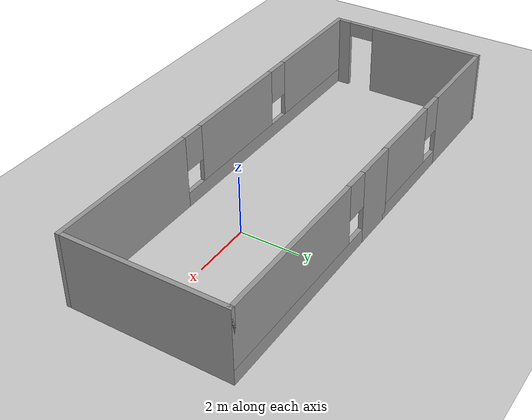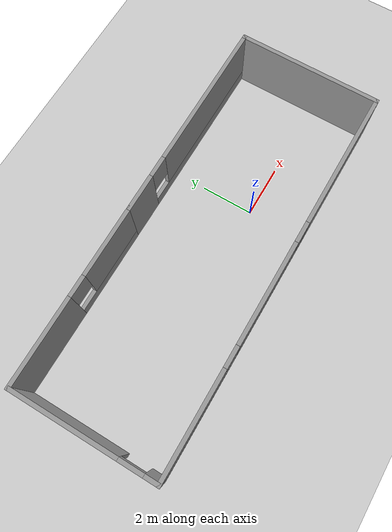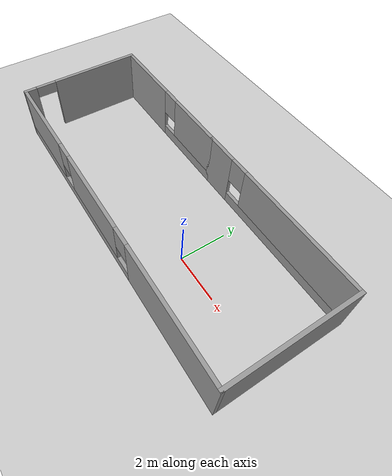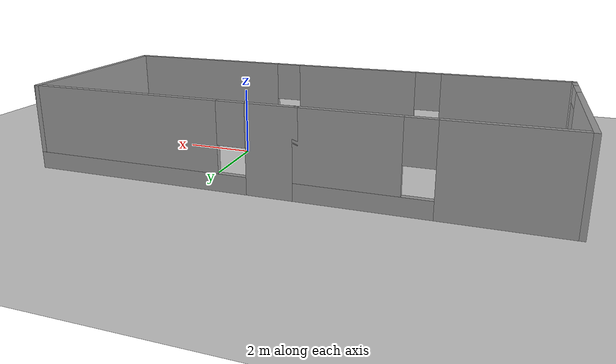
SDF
<sdf version="1.7">
 <world name="default">
  <light name="sun" type="directional">
   <pose>0 0 10 0 -0 0</pose>
   <diffuse>0.8 0.8 0.8 1</diffuse>
   <specular>0.2 0.2 0.2 1</specular>
   <attenuation>
    <range>1000</range>
    <constant>0.9</constant>
    <linear>0.01</linear>
    <quadratic>0.001</quadratic>
   </attenuation>
   <direction>-0.5 0.1 -0.9</direction>
   <spot><inner_angle>0</inner_angle><outer_angle>0</outer_angle><falloff>0</falloff></spot>
  </light>
  <model name="ground_plane">
   <static>1</static>
   <link name="link">
    <collision name="collision">
     <geometry><plane><normal>0 0 1</normal><size>100 100</size></plane></geometry>
     <surface><friction><ode><mu>100</mu><mu2>50</mu2></ode></friction></surface>
    </collision>
    <visual name="visual">
     <cast_shadows>0</cast_shadows>
     <geometry><plane><normal>0 0 1</normal><size>100 100</size></plane></geometry>
     <material>
      <script><uri>file://media/materials/scripts/gazebo.material</uri><name>Gazebo/Grey</name></script>
     </material>
    </visual>
   </link>
  </model>
  <gravity>0 0 -9.8</gravity>
  <magnetic_field>6e-06 2.3e-05 -4.2e-05</magnetic_field>
  <atmosphere type="adiabatic"/>
  <physics type="ode">
   <max_step_size>0.001</max_step_size>
   <real_time_factor>1</real_time_factor>
   <real_time_update_rate>1000</real_time_update_rate>
  </physics>
  <scene><ambient>0.4 0.4 0.4 1</ambient><background>0.7 0.7 0.7 1</background><shadows>1</shadows></scene>
  <audio><device>default</device></audio>
  <spherical_coordinates>
   <surface_model>EARTH_WGS84</surface_model>
   <latitude_deg>0</latitude_deg>
   <longitude_deg>0</longitude_deg>
   <elevation>0</elevation>
   <heading_deg>0</heading_deg>
  </spherical_coordinates>
  <model name="test">
   <pose>-2.26041 0.547931 0 0 -0 0</pose>
   <link name="Wall_10">
    <collision name="Wall_10_Collision">
     <geometry><box><size>5.5 0.15 2.5</size></box></geometry>
     <pose>0 0 1.25 0 -0 0</pose>
    </collision>
    <visual name="Wall_10_Visual">
     <pose>0 0 1.25 0 -0 0</pose>
     <geometry><box><size>5.5 0.15 2.5</size></box></geometry>
     <material>
      <script><uri>file://media/materials/scripts/gazebo.material</uri><name>Gazebo/Grey</name></script>
      <ambient>1 1 1 1</ambient>
     </material>
     <meta><layer>0</layer></meta>
    </visual>
    <pose>7.3 -0 0 0 -0 -1.5708</pose>
   </link>
   <link name="Wall_11">
    <pose>0 -2.675 0 0 -0 3.14159</pose>
    <visual name="Wall_11_Visual_0">
     <pose>-4.69232 0 1.25 0 -0 0</pose>
     <geometry><box><size>5.36536 0.15 2.5</size></box></geometry>
     <material>
      <script><uri>file://media/materials/scripts/gazebo.material</uri><name>Gazebo/Grey</name></script>
      <ambient>1 1 1 1</ambient>
     </material>
     <meta><layer>0</layer></meta>
    </visual>
    <collision name="Wall_11_Collision_0">
     <geometry><box><size>5.36536 0.15 2.5</size></box></geometry>
     <pose>-4.69232 0 1.25 0 -0 0</pose>
    </collision>
    <visual name="Wall_11_Visual_1">
     <pose>2.68268 0 0.25 0 -0 0</pose>
     <geometry><box><size>9.38464 0.15 0.5</size></box></geometry>
     <material>
      <script><uri>file://media/materials/scripts/gazebo.material</uri><name>Gazebo/Grey</name></script>
      <ambient>1 1 1 1</ambient>
     </material>
     <meta><layer>0</layer></meta>
    </visual>
    <collision name="Wall_11_Collision_1">
     <geometry><box><size>9.38464 0.15 0.5</size></box></geometry>
     <pose>2.68268 0 0.25 0 -0 0</pose>
    </collision>
    <visual name="Wall_11_Visual_2">
     <pose>0.732505 0 1.5 0 -0 0</pose>
     <geometry><box><size>3.88429 0.15 2</size></box></geometry>
     <material>
      <script><uri>file://media/materials/scripts/gazebo.material</uri><name>Gazebo/Grey</name></script>
      <ambient>1 1 1 1</ambient>
     </material>
     <meta><layer>0</layer></meta>
    </visual>
    <collision name="Wall_11_Collision_2">
     <geometry><box><size>3.88429 0.15 2</size></box></geometry>
     <pose>0.732505 0 1.5 0 -0 0</pose>
    </collision>
    <visual name="Wall_11_Visual_3">
     <pose>5.42483 0 1.5 0 -0 0</pose>
     <geometry><box><size>3.90035 0.15 2</size></box></geometry>
     <material>
      <script><uri>file://media/materials/scripts/gazebo.material</uri><name>Gazebo/Grey</name></script>
      <ambient>1 1 1 1</ambient>
     </material>
     <meta><layer>0</layer></meta>
    </visual>
    <collision name="Wall_11_Collision_3">
     <geometry><box><size>3.90035 0.15 2</size></box></geometry>
     <pose>5.42483 0 1.5 0 -0 0</pose>
    </collision>
    <visual name="Wall_11_Visual_4">
     <pose>-1.60964 0 1.9 0 -0 0</pose>
     <geometry><box><size>0.8 0.15 1.2</size></box></geometry>
     <material>
      <script><uri>file://media/materials/scripts/gazebo.material</uri><name>Gazebo/Grey</name></script>
      <ambient>1 1 1 1</ambient>
     </material>
     <meta><layer>0</layer></meta>
    </visual>
    <collision name="Wall_11_Collision_4">
     <geometry><box><size>0.8 0.15 1.2</size></box></geometry>
     <pose>-1.60964 0 1.9 0 -0 0</pose>
    </collision>
    <visual name="Wall_11_Visual_5">
     <pose>3.07465 0 1.9 0 -0 0</pose>
     <geometry><box><size>0.8 0.15 1.2</size></box></geometry>
     <material>
      <script><uri>file://media/materials/scripts/gazebo.material</uri><name>Gazebo/Grey</name></script>
      <ambient>1 1 1 1</ambient>
     </material>
     <meta><layer>0</layer></meta>
    </visual>
    <collision name="Wall_11_Collision_5">
     <geometry><box><size>0.8 0.15 1.2</size></box></geometry>
     <pose>3.07465 0 1.9 0 -0 0</pose>
    </collision>
   </link>
   <link name="Wall_12">
    <pose>-7.3 -0 0 0 -0 1.5708</pose>
    <visual name="Wall_12_Visual_0">
     <pose>-2.46016 0 1.25 0 -0 0</pose>
     <geometry><box><size>0.579671 0.15 2.5</size></box></geometry>
     <material>
      <script><uri>file://media/materials/scripts/gazebo.material</uri><name>Gazebo/Grey</name></script>
      <ambient>1 1 1 1</ambient>
     </material>
     <meta><layer>0</layer></meta>
    </visual>
    <collision name="Wall_12_Collision_0">
     <geometry><box><size>0.579671 0.15 2.5</size></box></geometry>
     <pose>-2.46016 0 1.25 0 -0 0</pose>
    </collision>
    <visual name="Wall_12_Visual_1">
     <pose>0.739836 0 1.25 0 -0 0</pose>
     <geometry><box><size>4.02033 0.15 2.5</size></box></geometry>
     <material>
      <script><uri>file://media/materials/scripts/gazebo.material</uri><name>Gazebo/Grey</name></script>
      <ambient>1 1 1 1</ambient>
     </material>
     <meta><layer>0</layer></meta>
    </visual>
    <collision name="Wall_12_Collision_1">
     <geometry><box><size>4.02033 0.15 2.5</size></box></geometry>
     <pose>0.739836 0 1.25 0 -0 0</pose>
    </collision>
    <visual name="Wall_12_Visual_2">
     <pose>-1.72033 0 2.25 0 -0 0</pose>
     <geometry><box><size>0.9 0.15 0.5</size></box></geometry>
     <material>
      <script><uri>file://media/materials/scripts/gazebo.material</uri><name>Gazebo/Grey</name></script>
      <ambient>1 1 1 1</ambient>
     </material>
     <meta><layer>0</layer></meta>
    </visual>
    <collision name="Wall_12_Collision_2">
     <geometry><box><size>0.9 0.15 0.5</size></box></geometry>
     <pose>-1.72033 0 2.25 0 -0 0</pose>
    </collision>
   </link>
   <link name="Wall_13">
    <pose>-3.925 2.675 0 0 -0 0</pose>
    <visual name="Wall_13_Visual_0">
     <pose>-1.78119 0 1.25 0 -0 0</pose>
     <geometry><box><size>3.33762 0.15 2.5</size></box></geometry>
     <material>
      <script><uri>file://media/materials/scripts/gazebo.material</uri><name>Gazebo/Grey</name></script>
      <ambient>1 1 1 1</ambient>
     </material>
     <meta><layer>0</layer></meta>
    </visual>
    <collision name="Wall_13_Collision_0">
     <geometry><box><size>3.33762 0.15 2.5</size></box></geometry>
     <pose>-1.78119 0 1.25 0 -0 0</pose>
    </collision>
    <visual name="Wall_13_Visual_1">
     <pose>1.66881 0 0.25 0 -0 0</pose>
     <geometry><box><size>3.56238 0.15 0.5</size></box></geometry>
     <material>
      <script><uri>file://media/materials/scripts/gazebo.material</uri><name>Gazebo/Grey</name></script>
      <ambient>1 1 1 1</ambient>
     </material>
     <meta><layer>0</layer></meta>
    </visual>
    <collision name="Wall_13_Collision_1">
     <geometry><box><size>3.56238 0.15 0.5</size></box></geometry>
     <pose>1.66881 0 0.25 0 -0 0</pose>
    </collision>
    <visual name="Wall_13_Visual_2">
     <pose>2.06881 0 1.5 0 -0 0</pose>
     <geometry><box><size>2.76238 0.15 2</size></box></geometry>
     <material>
      <script><uri>file://media/materials/scripts/gazebo.material</uri><name>Gazebo/Grey</name></script>
      <ambient>1 1 1 1</ambient>
     </material>
     <meta><layer>0</layer></meta>
    </visual>
    <collision name="Wall_13_Collision_2">
     <geometry><box><size>2.76238 0.15 2</size></box></geometry>
     <pose>2.06881 0 1.5 0 -0 0</pose>
    </collision>
    <visual name="Wall_13_Visual_3">
     <pose>0.287624 0 1.9 0 -0 0</pose>
     <geometry><box><size>0.8 0.15 1.2</size></box></geometry>
     <material>
      <script><uri>file://media/materials/scripts/gazebo.material</uri><name>Gazebo/Grey</name></script>
      <ambient>1 1 1 1</ambient>
     </material>
     <meta><layer>0</layer></meta>
    </visual>
    <collision name="Wall_13_Collision_3">
     <geometry><box><size>0.8 0.15 1.2</size></box></geometry>
     <pose>0.287624 0 1.9 0 -0 0</pose>
    </collision>
   </link>
   <link name="Wall_9">
    <pose>3.375 2.675 0 0 -0 0</pose>
    <visual name="Wall_9_Visual_0">
     <pose>-3.28039 0 1.25 0 -0 0</pose>
     <geometry><box><size>1.43921 0.15 2.5</size></box></geometry>
     <material>
      <script><uri>file://media/materials/scripts/gazebo.material</uri><name>Gazebo/Grey</name></script>
      <ambient>1 1 1 1</ambient>
     </material>
     <meta><layer>0</layer></meta>
    </visual>
    <collision name="Wall_9_Collision_0">
     <geometry><box><size>1.43921 0.15 2.5</size></box></geometry>
     <pose>-3.28039 0 1.25 0 -0 0</pose>
    </collision>
    <visual name="Wall_9_Visual_1">
     <pose>0.719608 0 0.25 0 -0 0</pose>
     <geometry><box><size>6.56079 0.15 0.5</size></box></geometry>
     <material>
      <script><uri>file://media/materials/scripts/gazebo.material</uri><name>Gazebo/Grey</name></script>
      <ambient>1 1 1 1</ambient>
     </material>
     <meta><layer>0</layer></meta>
    </visual>
    <collision name="Wall_9_Collision_1">
     <geometry><box><size>6.56079 0.15 0.5</size></box></geometry>
     <pose>0.719608 0 0.25 0 -0 0</pose>
    </collision>
    <visual name="Wall_9_Visual_2">
     <pose>1.11961 0 1.5 0 -0 0</pose>
     <geometry><box><size>5.76079 0.15 2</size></box></geometry>
     <material>
      <script><uri>file://media/materials/scripts/gazebo.material</uri><name>Gazebo/Grey</name></script>
      <ambient>1 1 1 1</ambient>
     </material>
     <meta><layer>0</layer></meta>
    </visual>
    <collision name="Wall_9_Collision_2">
     <geometry><box><size>5.76079 0.15 2</size></box></geometry>
     <pose>1.11961 0 1.5 0 -0 0</pose>
    </collision>
    <visual name="Wall_9_Visual_3">
     <pose>-2.16079 0 1.9 0 -0 0</pose>
     <geometry><box><size>0.8 0.15 1.2</size></box></geometry>
     <material>
      <script><uri>file://media/materials/scripts/gazebo.material</uri><name>Gazebo/Grey</name></script>
      <ambient>1 1 1 1</ambient>
     </material>
     <meta><layer>0</layer></meta>
    </visual>
    <collision name="Wall_9_Collision_3">
     <geometry><box><size>0.8 0.15 1.2</size></box></geometry>
     <pose>-2.16079 0 1.9 0 -0 0</pose>
    </collision>
   </link>
   <static>1</static>
  </model>
 </world>
</sdf>
